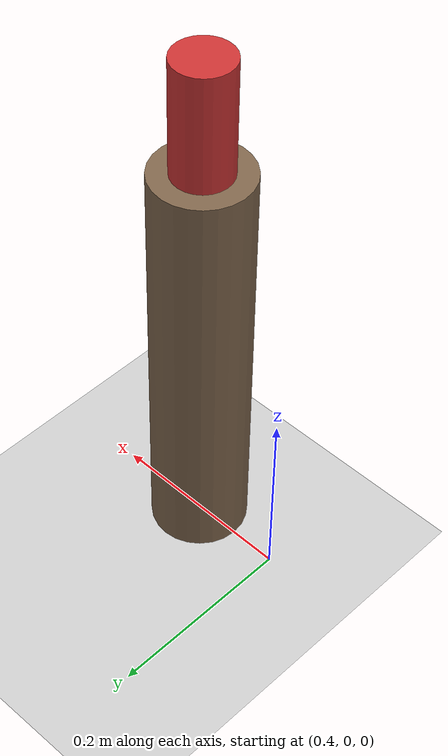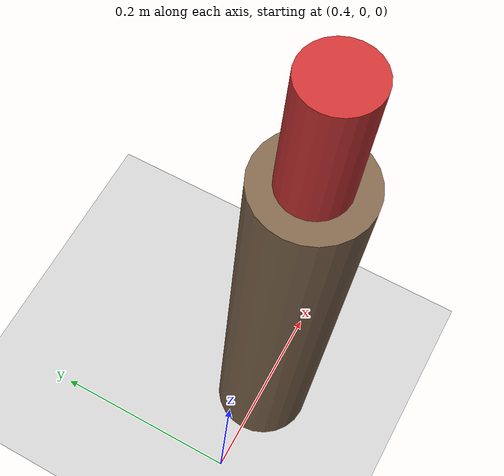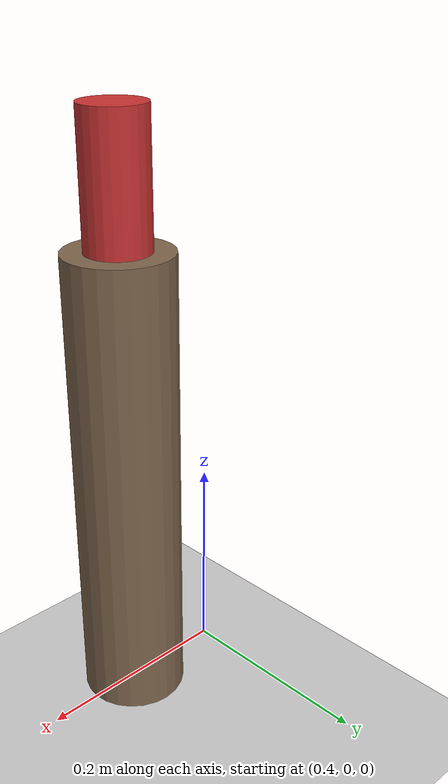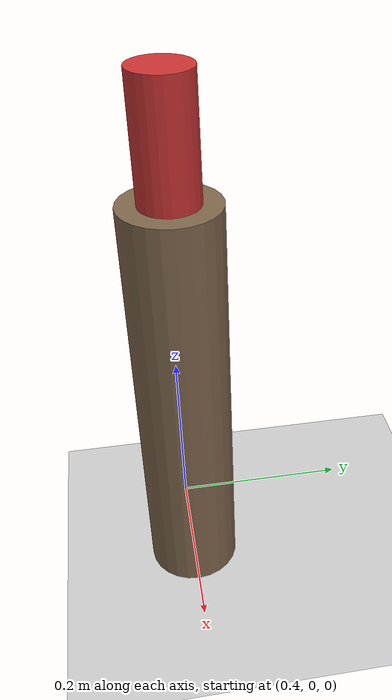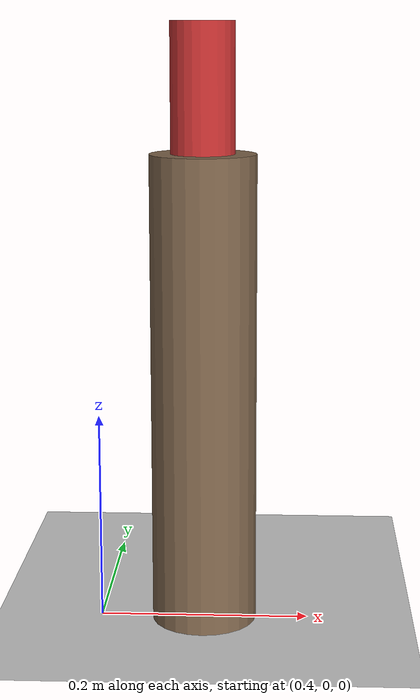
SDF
<?xml version="1.0"?>
<sdf version="1.6">
  <world name="arm_demo">
    <include><uri>model://sun</uri></include>
    <include><uri>model://ground_plane</uri></include>

    <!-- Be do lon: tru tron nho (ban kinh 5cm), cao 0.45, ngay duoi lon -->
    <model name="pedestal">
      <static>true</static>
      <pose>0.50 0 0.225 0 0 0</pose>
      <link name="link">
        <collision name="c">
          <geometry><cylinder><radius>0.05</radius><length>0.45</length></cylinder></geometry>
        </collision>
        <visual name="v">
          <geometry><cylinder><radius>0.05</radius><length>0.45</length></cylinder></geometry>
          <material><ambient>0.5 0.4 0.3 1</ambient><diffuse>0.5 0.4 0.3 1</diffuse></material>
        </visual>
      </link>
    </model>

    <!-- Lon: tren be, tam ~z=0.51 -->
    <model name="can">
      <pose>0.50 0 0.51 0 0 0</pose>
      <link name="link">
        <inertial>
          <mass>0.1</mass>
          <inertia><ixx>0.0002</ixx><iyy>0.0002</iyy><izz>0.0001</izz>
                   <ixy>0</ixy><ixz>0</ixz><iyz>0</iyz></inertia>
        </inertial>
        <collision name="c">
          <geometry><cylinder><radius>0.03</radius><length>0.12</length></cylinder></geometry>
          <surface><friction><ode><mu>1.5</mu><mu2>1.5</mu2></ode></friction></surface>
        </collision>
        <visual name="v">
          <geometry><cylinder><radius>0.03</radius><length>0.12</length></cylinder></geometry>
          <material><ambient>0.8 0.2 0.2 1</ambient><diffuse>0.8 0.2 0.2 1</diffuse></material>
        </visual>
      </link>
    </model>
  </world>
</sdf>
